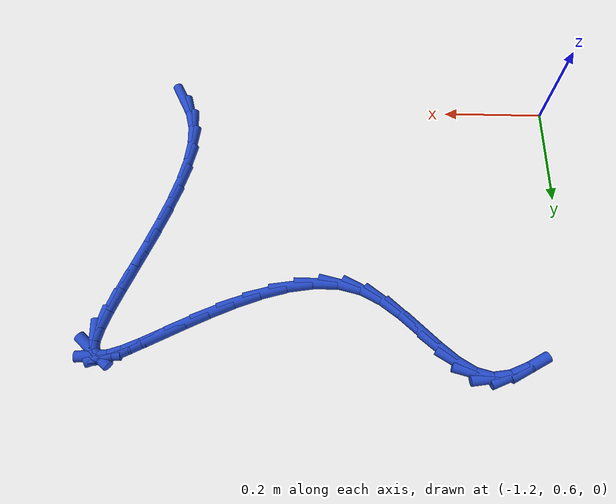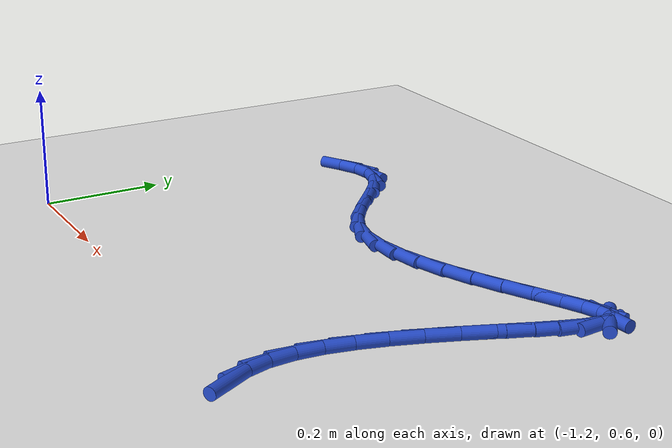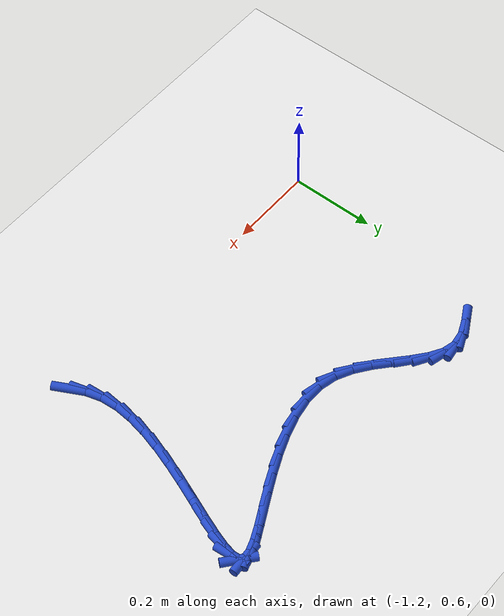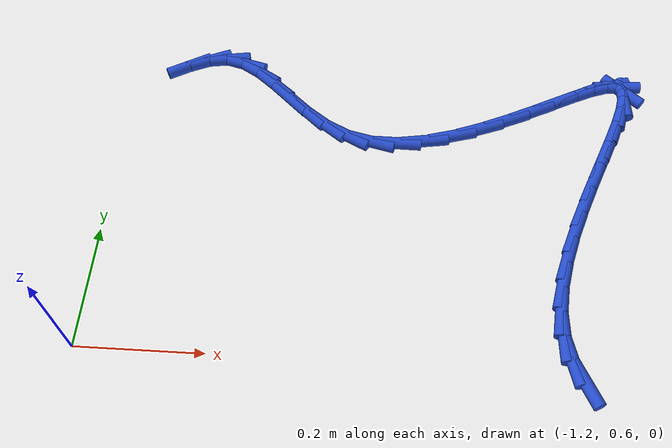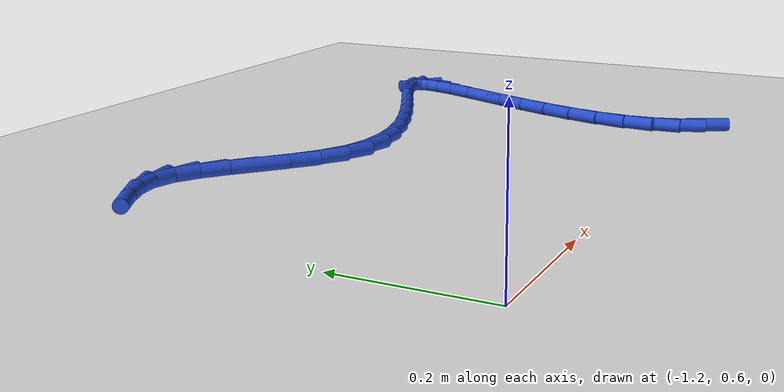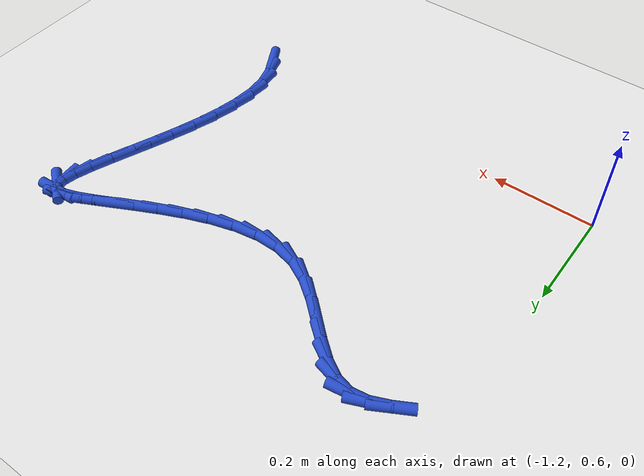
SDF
<sdf version="1.6">
 <world name="default">
  <model name="ground_plane">
   <static>1</static>
   <link name="link">
    <collision name="collision">
     <geometry><plane><normal>0 0 1</normal><size>100 100</size></plane></geometry>
     <surface><friction><ode><mu>100</mu><mu2>50</mu2></ode></friction></surface>
    </collision>
    <visual name="visual">
     <cast_shadows>0</cast_shadows>
     <geometry><plane><normal>0 0 1</normal><size>100 100</size></plane></geometry>
     <material>
      <script><uri>file://media/materials/scripts/gazebo.material</uri><name>Gazebo/WhiteGlow</name></script>
     </material>
    </visual>
   </link>
  </model>
  <model name="line">
   <link name="link_20">
    <pose>-0.44562488658655774 0.5843286533049047 0.01 0 1.57 -1.0892720307665782</pose>
    <collision name="collision">
     <geometry><cylinder><radius>0.01</radius><length>0.08</length></cylinder></geometry>
    </collision>
    <visual name="visual">
     <material>
      <script><name>Gazebo/Blue</name><uri>file://media/materials/scripts/gazebo.material</uri></script>
     </material>
     <geometry><cylinder><radius>0.01</radius><length>0.08</length></cylinder></geometry>
    </visual>
   </link>
   <link name="link_21">
    <pose>-0.46253071876264346 0.6166812282397668 0.01 0 1.57 -1.2939818250842174</pose>
    <collision name="collision">
     <geometry><cylinder><radius>0.01</radius><length>0.08</length></cylinder></geometry>
    </collision>
    <visual name="visual">
     <material>
      <script><name>Gazebo/Blue</name><uri>file://media/materials/scripts/gazebo.material</uri></script>
     </material>
     <geometry><cylinder><radius>0.01</radius><length>0.08</length></cylinder></geometry>
    </visual>
   </link>
   <link name="link_22">
    <pose>-0.4727995150765682 0.6528251441669608 0.01 0 1.57 -1.4990107906677212</pose>
    <collision name="collision">
     <geometry><cylinder><radius>0.01</radius><length>0.08</length></cylinder></geometry>
    </collision>
    <visual name="visual">
     <material>
      <script><name>Gazebo/Blue</name><uri>file://media/materials/scripts/gazebo.material</uri></script>
     </material>
     <geometry><cylinder><radius>0.01</radius><length>0.08</length></cylinder></geometry>
    </visual>
   </link>
   <link name="link_23">
    <pose>-0.47569950325526184 0.6931536734492194 0.01 0 1.57 1.4840365722013258</pose>
    <collision name="collision">
     <geometry><cylinder><radius>0.01</radius><length>0.08</length></cylinder></geometry>
    </collision>
    <visual name="visual">
     <material>
      <script><name>Gazebo/Blue</name><uri>file://media/materials/scripts/gazebo.material</uri></script>
     </material>
     <geometry><cylinder><radius>0.01</radius><length>0.08</length></cylinder></geometry>
    </visual>
   </link>
   <link name="link_24">
    <pose>-0.4718835881320104 0.7370258106814196 0.01 0 1.57 1.3742121819596693</pose>
    <collision name="collision">
     <geometry><cylinder><radius>0.01</radius><length>0.08</length></cylinder></geometry>
    </collision>
    <visual name="visual">
     <material>
      <script><name>Gazebo/Blue</name><uri>file://media/materials/scripts/gazebo.material</uri></script>
     </material>
     <geometry><cylinder><radius>0.01</radius><length>0.08</length></cylinder></geometry>
    </visual>
   </link>
   <link name="link_25">
    <pose>-0.46266656815177026 0.7833061522741295 0.01 0 1.57 1.2980764402193847</pose>
    <collision name="collision">
     <geometry><cylinder><radius>0.01</radius><length>0.08</length></cylinder></geometry>
    </collision>
    <visual name="visual">
     <material>
      <script><name>Gazebo/Blue</name><uri>file://media/materials/scripts/gazebo.material</uri></script>
     </material>
     <geometry><cylinder><radius>0.01</radius><length>0.08</length></cylinder></geometry>
    </visual>
   </link>
   <link name="link_26">
    <pose>-0.44936735789052773 0.8308562201140498 0.01 0 1.57 1.2458646300318095</pose>
    <collision name="collision">
     <geometry><cylinder><radius>0.01</radius><length>0.08</length></cylinder></geometry>
    </collision>
    <visual name="visual">
     <material>
      <script><name>Gazebo/Blue</name><uri>file://media/materials/scripts/gazebo.material</uri></script>
     </material>
     <geometry><cylinder><radius>0.01</radius><length>0.08</length></cylinder></geometry>
    </visual>
   </link>
   <link name="link_27">
    <pose>-0.4333048719242693 0.8785375360878804 0.01 0 1.57 1.211949305810879</pose>
    <collision name="collision">
     <geometry><cylinder><radius>0.01</radius><length>0.08</length></cylinder></geometry>
    </collision>
    <visual name="visual">
     <material>
      <script><name>Gazebo/Blue</name><uri>file://media/materials/scripts/gazebo.material</uri></script>
     </material>
     <geometry><cylinder><radius>0.01</radius><length>0.08</length></cylinder></geometry>
    </visual>
   </link>
   <link name="link_28">
    <pose>-0.41579802482898115 0.9252116220823217 0.01 0 1.57 1.193761300913318</pose>
    <collision name="collision">
     <geometry><cylinder><radius>0.01</radius><length>0.08</length></cylinder></geometry>
    </collision>
    <visual name="visual">
     <material>
      <script><name>Gazebo/Blue</name><uri>file://media/materials/scripts/gazebo.material</uri></script>
     </material>
     <geometry><cylinder><radius>0.01</radius><length>0.08</length></cylinder></geometry>
    </visual>
   </link>
   <link name="link_29">
    <pose>-0.3981657311806492 0.9697399999840737 0.01 0 1.57 1.191520634864494</pose>
    <collision name="collision">
     <geometry><cylinder><radius>0.01</radius><length>0.08</length></cylinder></geometry>
    </collision>
    <visual name="visual">
     <material>
      <script><name>Gazebo/Blue</name><uri>file://media/materials/scripts/gazebo.material</uri></script>
     </material>
     <geometry><cylinder><radius>0.01</radius><length>0.08</length></cylinder></geometry>
    </visual>
   </link>
   <link name="link_30">
    <pose>-0.38172690555526 1.0109841916798368 0.01 0 1.57 1.2092102701060599</pose>
    <collision name="collision">
     <geometry><cylinder><radius>0.01</radius><length>0.08</length></cylinder></geometry>
    </collision>
    <visual name="visual">
     <material>
      <script><name>Gazebo/Blue</name><uri>file://media/materials/scripts/gazebo.material</uri></script>
     </material>
     <geometry><cylinder><radius>0.01</radius><length>0.08</length></cylinder></geometry>
    </visual>
   </link>
   <link name="link_31">
    <pose>-0.3678004625287998 1.0478057190563108 0.01 0 1.57 1.2584311544003208</pose>
    <collision name="collision">
     <geometry><cylinder><radius>0.01</radius><length>0.08</length></cylinder></geometry>
    </collision>
    <visual name="visual">
     <material>
      <script><name>Gazebo/Blue</name><uri>file://media/materials/scripts/gazebo.material</uri></script>
     </material>
     <geometry><cylinder><radius>0.01</radius><length>0.08</length></cylinder></geometry>
    </visual>
   </link>
   <link name="link_32">
    <pose>-0.35770531667725475 1.079066104000196 0.01 0 1.57 1.3721177328059906</pose>
    <collision name="collision">
     <geometry><cylinder><radius>0.01</radius><length>0.08</length></cylinder></geometry>
    </collision>
    <visual name="visual">
     <material>
      <script><name>Gazebo/Blue</name><uri>file://media/materials/scripts/gazebo.material</uri></script>
     </material>
     <geometry><cylinder><radius>0.01</radius><length>0.08</length></cylinder></geometry>
    </visual>
   </link>
   <link name="link_33">
    <pose>-0.3527603825766111 1.1036268683981927 0.01 0 1.57 -1.4799021810856055</pose>
    <collision name="collision">
     <geometry><cylinder><radius>0.01</radius><length>0.08</length></cylinder></geometry>
    </collision>
    <visual name="visual">
     <material>
      <script><name>Gazebo/Blue</name><uri>file://media/materials/scripts/gazebo.material</uri></script>
     </material>
     <geometry><cylinder><radius>0.01</radius><length>0.08</length></cylinder></geometry>
    </visual>
   </link>
   <link name="link_34">
    <pose>-0.35428457480285513 1.1203495341370011 0.01 0 1.57 -0.697594900266382</pose>
    <collision name="collision">
     <geometry><cylinder><radius>0.01</radius><length>0.08</length></cylinder></geometry>
    </collision>
    <visual name="visual">
     <material>
      <script><name>Gazebo/Blue</name><uri>file://media/materials/scripts/gazebo.material</uri></script>
     </material>
     <geometry><cylinder><radius>0.01</radius><length>0.08</length></cylinder></geometry>
    </visual>
   </link>
   <link name="link_35">
    <pose>-0.3635677668057536 1.128130569094776 0.01 0 1.57 0.061412992556619694</pose>
    <collision name="collision">
     <geometry><cylinder><radius>0.01</radius><length>0.08</length></cylinder></geometry>
    </collision>
    <visual name="visual">
     <material>
      <script><name>Gazebo/Blue</name><uri>file://media/materials/scripts/gazebo.material</uri></script>
     </material>
     <geometry><cylinder><radius>0.01</radius><length>0.08</length></cylinder></geometry>
    </visual>
   </link>
   <link name="link_36">
    <pose>-0.3809041705947366 1.1270645481350383 0.01 0 1.57 0.3289009638198146</pose>
    <collision name="collision">
     <geometry><cylinder><radius>0.01</radius><length>0.08</length></cylinder></geometry>
    </collision>
    <visual name="visual">
     <material>
      <script><name>Gazebo/Blue</name><uri>file://media/materials/scripts/gazebo.material</uri></script>
     </material>
     <geometry><cylinder><radius>0.01</radius><length>0.08</length></cylinder></geometry>
    </visual>
   </link>
   <link name="link_37">
    <pose>-0.40536683500557974 1.1187155055874975 0.01 0 1.57 0.42865265110448636</pose>
    <collision name="collision">
     <geometry><cylinder><radius>0.01</radius><length>0.08</length></cylinder></geometry>
    </collision>
    <visual name="visual">
     <material>
      <script><name>Gazebo/Blue</name><uri>file://media/materials/scripts/gazebo.material</uri></script>
     </material>
     <geometry><cylinder><radius>0.01</radius><length>0.08</length></cylinder></geometry>
    </visual>
   </link>
   <link name="link_38">
    <pose>-0.435954077342247 1.1047374023037362 0.01 0 1.57 0.4658436570741813</pose>
    <collision name="collision">
     <geometry><cylinder><radius>0.01</radius><length>0.08</length></cylinder></geometry>
    </collision>
    <visual name="visual">
     <material>
      <script><name>Gazebo/Blue</name><uri>file://media/materials/scripts/gazebo.material</uri></script>
     </material>
     <geometry><cylinder><radius>0.01</radius><length>0.08</length></cylinder></geometry>
    </visual>
   </link>
   <link name="link_39">
    <pose>-0.4716642149087021 1.0867841991353362 0.01 0 1.57 0.47082534776931784</pose>
    <collision name="collision">
     <geometry><cylinder><radius>0.01</radius><length>0.08</length></cylinder></geometry>
    </collision>
    <visual name="visual">
     <material>
      <script><name>Gazebo/Blue</name><uri>file://media/materials/scripts/gazebo.material</uri></script>
     </material>
     <geometry><cylinder><radius>0.01</radius><length>0.08</length></cylinder></geometry>
    </visual>
   </link>
   <link name="link_40">
    <pose>-0.5114955650089086 1.06650985693388 0.01 0 1.57 0.4536534978455763</pose>
    <collision name="collision">
     <geometry><cylinder><radius>0.01</radius><length>0.08</length></cylinder></geometry>
    </collision>
    <visual name="visual">
     <material>
      <script><name>Gazebo/Blue</name><uri>file://media/materials/scripts/gazebo.material</uri></script>
     </material>
     <geometry><cylinder><radius>0.01</radius><length>0.08</length></cylinder></geometry>
    </visual>
   </link>
   <link name="link_41">
    <pose>-0.5544464449468299 1.04556833655095 0.01 0 1.57 0.4168188583055822</pose>
    <collision name="collision">
     <geometry><cylinder><radius>0.01</radius><length>0.08</length></cylinder></geometry>
    </collision>
    <visual name="visual">
     <material>
      <script><name>Gazebo/Blue</name><uri>file://media/materials/scripts/gazebo.material</uri></script>
     </material>
     <geometry><cylinder><radius>0.01</radius><length>0.08</length></cylinder></geometry>
    </visual>
   </link>
   <link name="link_42">
    <pose>-0.5995151720264303 1.0256135988381283 0.01 0 1.57 0.3586692965020733</pose>
    <collision name="collision">
     <geometry><cylinder><radius>0.01</radius><length>0.08</length></cylinder></geometry>
    </collision>
    <visual name="visual">
     <material>
      <script><name>Gazebo/Blue</name><uri>file://media/materials/scripts/gazebo.material</uri></script>
     </material>
     <geometry><cylinder><radius>0.01</radius><length>0.08</length></cylinder></geometry>
    </visual>
   </link>
   <link name="link_43">
    <pose>-0.6457000635516732 1.0082996046469967 0.01 0 1.57 0.27411923524427345</pose>
    <collision name="collision">
     <geometry><cylinder><radius>0.01</radius><length>0.08</length></cylinder></geometry>
    </collision>
    <visual name="visual">
     <material>
      <script><name>Gazebo/Blue</name><uri>file://media/materials/scripts/gazebo.material</uri></script>
     </material>
     <geometry><cylinder><radius>0.01</radius><length>0.08</length></cylinder></geometry>
    </visual>
   </link>
   <link name="link_44">
    <pose>-0.6919994368265221 0.9952803148291377 0.01 0 1.57 0.15445871595914</pose>
    <collision name="collision">
     <geometry><cylinder><radius>0.01</radius><length>0.08</length></cylinder></geometry>
    </collision>
    <visual name="visual">
     <material>
      <script><name>Gazebo/Blue</name><uri>file://media/materials/scripts/gazebo.material</uri></script>
     </material>
     <geometry><cylinder><radius>0.01</radius><length>0.08</length></cylinder></geometry>
    </visual>
   </link>
   <link name="link_45">
    <pose>-0.7374116091549409 0.9882096902361333 0.01 0 1.57 -0.012222766391572677</pose>
    <collision name="collision">
     <geometry><cylinder><radius>0.01</radius><length>0.08</length></cylinder></geometry>
    </collision>
    <visual name="visual">
     <material>
      <script><name>Gazebo/Blue</name><uri>file://media/materials/scripts/gazebo.material</uri></script>
     </material>
     <geometry><cylinder><radius>0.01</radius><length>0.08</length></cylinder></geometry>
    </visual>
   </link>
   <link name="link_46">
    <pose>-0.7809348978408933 0.9887416917195663 0.01 0 1.57 -0.2361194447221591</pose>
    <collision name="collision">
     <geometry><cylinder><radius>0.01</radius><length>0.08</length></cylinder></geometry>
    </collision>
    <visual name="visual">
     <material>
      <script><name>Gazebo/Blue</name><uri>file://media/materials/scripts/gazebo.material</uri></script>
     </material>
     <geometry><cylinder><radius>0.01</radius><length>0.08</length></cylinder></geometry>
    </visual>
   </link>
   <link name="link_47">
    <pose>-0.8215713661423033 0.998519136332389 0.01 0 1.57 -0.47446259756762127</pose>
    <collision name="collision">
     <geometry><cylinder><radius>0.01</radius><length>0.08</length></cylinder></geometry>
    </collision>
    <visual name="visual">
     <material>
      <script><name>Gazebo/Blue</name><uri>file://media/materials/scripts/gazebo.material</uri></script>
     </material>
     <geometry><cylinder><radius>0.01</radius><length>0.08</length></cylinder></geometry>
    </visual>
   </link>
   <link name="link_48">
    <pose>-0.8588362780828055 1.017658125623272 0.01 0 1.57 -0.6382949397071945</pose>
    <collision name="collision">
     <geometry><cylinder><radius>0.01</radius><length>0.08</length></cylinder></geometry>
    </collision>
    <visual name="visual">
     <material>
      <script><name>Gazebo/Blue</name><uri>file://media/materials/scripts/gazebo.material</uri></script>
     </material>
     <geometry><cylinder><radius>0.01</radius><length>0.08</length></cylinder></geometry>
    </visual>
   </link>
   <link name="link_49">
    <pose>-0.8932755954412324 1.0432085493418637 0.01 0 1.57 -0.7257580335973369</pose>
    <collision name="collision">
     <geometry><cylinder><radius>0.01</radius><length>0.08</length></cylinder></geometry>
    </collision>
    <visual name="visual">
     <material>
      <script><name>Gazebo/Blue</name><uri>file://media/materials/scripts/gazebo.material</uri></script>
     </material>
     <geometry><cylinder><radius>0.01</radius><length>0.08</length></cylinder></geometry>
    </visual>
   </link>
   <link name="link_50">
    <pose>-0.9255585857476128 1.0718534762689127 0.01 0 1.57 -0.7453403258176318</pose>
    <collision name="collision">
     <geometry><cylinder><radius>0.01</radius><length>0.08</length></cylinder></geometry>
    </collision>
    <visual name="visual">
     <material>
      <script><name>Gazebo/Blue</name><uri>file://media/materials/scripts/gazebo.material</uri></script>
     </material>
     <geometry><cylinder><radius>0.01</radius><length>0.08</length></cylinder></geometry>
    </visual>
   </link>
   <link name="link_51">
    <pose>-0.9563545165319753 1.1002759751851665 0.01 0 1.57 -0.6927932049309159</pose>
    <collision name="collision">
     <geometry><cylinder><radius>0.01</radius><length>0.08</length></cylinder></geometry>
    </collision>
    <visual name="visual">
     <material>
      <script><name>Gazebo/Blue</name><uri>file://media/materials/scripts/gazebo.material</uri></script>
     </material>
     <geometry><cylinder><radius>0.01</radius><length>0.08</length></cylinder></geometry>
    </visual>
   </link>
   <link name="link_52">
    <pose>-0.986332655324349 1.1251591148713742 0.01 0 1.57 -0.5435952391287627</pose>
    <collision name="collision">
     <geometry><cylinder><radius>0.01</radius><length>0.08</length></cylinder></geometry>
    </collision>
    <visual name="visual">
     <material>
      <script><name>Gazebo/Blue</name><uri>file://media/materials/scripts/gazebo.material</uri></script>
     </material>
     <geometry><cylinder><radius>0.01</radius><length>0.08</length></cylinder></geometry>
    </visual>
   </link>
   <link name="link_53">
    <pose>-1.0161622696547623 1.143185964108283 0.01 0 1.57 -0.2532114460902516</pose>
    <collision name="collision">
     <geometry><cylinder><radius>0.01</radius><length>0.08</length></cylinder></geometry>
    </collision>
    <visual name="visual">
     <material>
      <script><name>Gazebo/Blue</name><uri>file://media/materials/scripts/gazebo.material</uri></script>
     </material>
     <geometry><cylinder><radius>0.01</radius><length>0.08</length></cylinder></geometry>
    </visual>
   </link>
   <link name="link_54">
    <pose>-1.0465126270532437 1.1510395916766412 0.01 0 1.57 0.1453605776418237</pose>
    <collision name="collision">
     <geometry><cylinder><radius>0.01</radius><length>0.08</length></cylinder></geometry>
    </collision>
    <visual name="visual">
     <material>
      <script><name>Gazebo/Blue</name><uri>file://media/materials/scripts/gazebo.material</uri></script>
     </material>
     <geometry><cylinder><radius>0.01</radius><length>0.08</length></cylinder></geometry>
    </visual>
   </link>
   <link name="link_55">
    <pose>-1.0780071121308081 1.1464290159405894 0.01 0 1.57 0.4064266854414274</pose>
    <collision name="collision">
     <geometry><cylinder><radius>0.01</radius><length>0.08</length></cylinder></geometry>
    </collision>
    <visual name="visual">
     <material>
      <script><name>Gazebo/Blue</name><uri>file://media/materials/scripts/gazebo.material</uri></script>
     </material>
     <geometry><cylinder><radius>0.01</radius><length>0.08</length></cylinder></geometry>
    </visual>
   </link>
   <link name="link_56">
    <pose>-1.1110388222185321 1.132212516557784 0.01 0 1.57 0.5064151715837497</pose>
    <collision name="collision">
     <geometry><cylinder><radius>0.01</radius><length>0.08</length></cylinder></geometry>
    </collision>
    <visual name="visual">
     <material>
      <script><name>Gazebo/Blue</name><uri>file://media/materials/scripts/gazebo.material</uri></script>
     </material>
     <geometry><cylinder><radius>0.01</radius><length>0.08</length></cylinder></geometry>
    </visual>
   </link>
  </model>
 </world>
</sdf>
